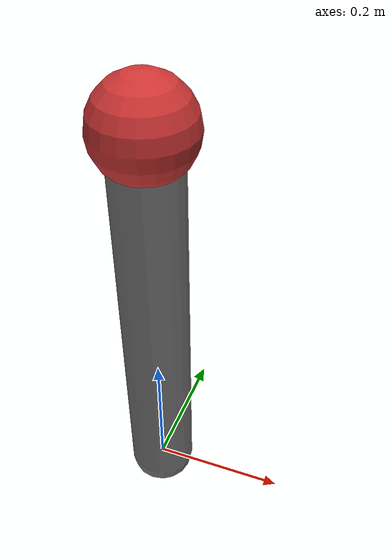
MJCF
<mujoco model="simple_pendulum">
  <compiler angle="radian"/>

  <option gravity="0 0 -9.8" timestep="0.01"/>

  <worldbody>
    <light name="light1" pos="0.3 0.3 1"/>
    <geom name="ground" type="plane" pos=" 0 0 -1.2" size="2 2 0.1" rgba="0.5 0.5 0.5 1"/>

    <body name="pendulum" pos="0 0 0">
      <joint name="pivot" type="hinge" pos="0 0 0" axis="0 1 0" damping="0.1"/>
      <geom name="rod" type="capsule" fromto="0 0 0 0 0 0.6" size="0.05" rgba="0.5 0.5 0.5 1"/>
      <geom name="mass" type="sphere" pos="0 0 0.6" size="0.07" rgba="0.8 0.2 0.2 1"/>
    </body>
  </worldbody>

  <actuator>
    <motor name="torque" joint="pivot" gear="1" ctrllimited="true" ctrlrange="-5 5"/>
  </actuator>
</mujoco>
